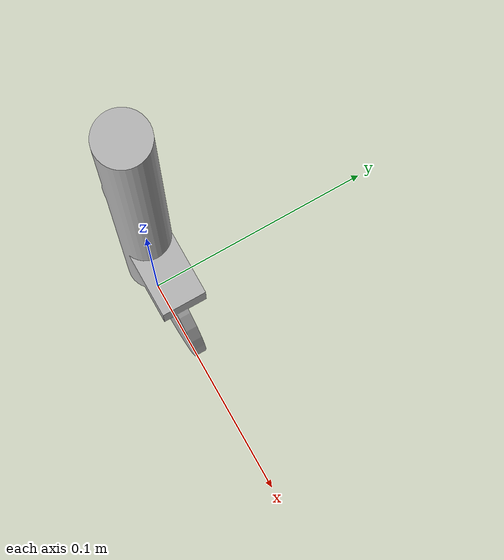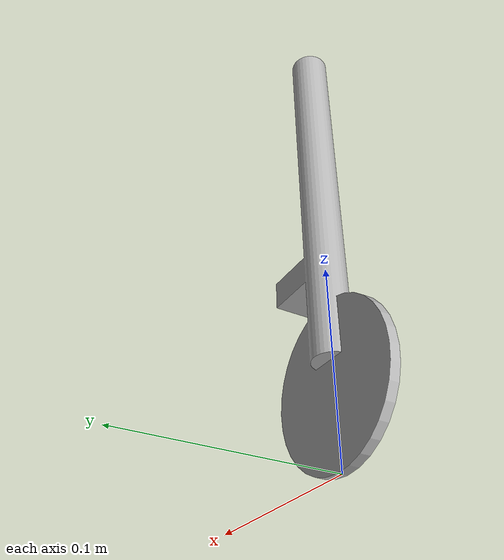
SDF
<?xml version="1.0" ?>
<sdf version="1.3">
  <model name="pizza_cutter">
    <link name="pizza_cutter">
      <gravity>false</gravity>
      <inertial>
        <mass>0.02</mass>
      </inertial>
      <collision name="pizza_cutter_collision">
        <origin xyz="0 0 0.17" rpy="0 0 0"/>
        <geometry><box><size>0.0001 0.0001 0.0001</size></box></geometry>
          <surface>
            <contact>
              <collide_without_contact>true</collide_without_contact>
            </contact>
          </surface>
      </collision>
      <visual name="pizza_cutter_visual">
        <geometry>
          <mesh>
            <uri>model://pizza_cutter/meshes/pizza_cutter.stl</uri>
          </mesh>
        </geometry>
      </visual>
    </link>
  </model>
</sdf>
